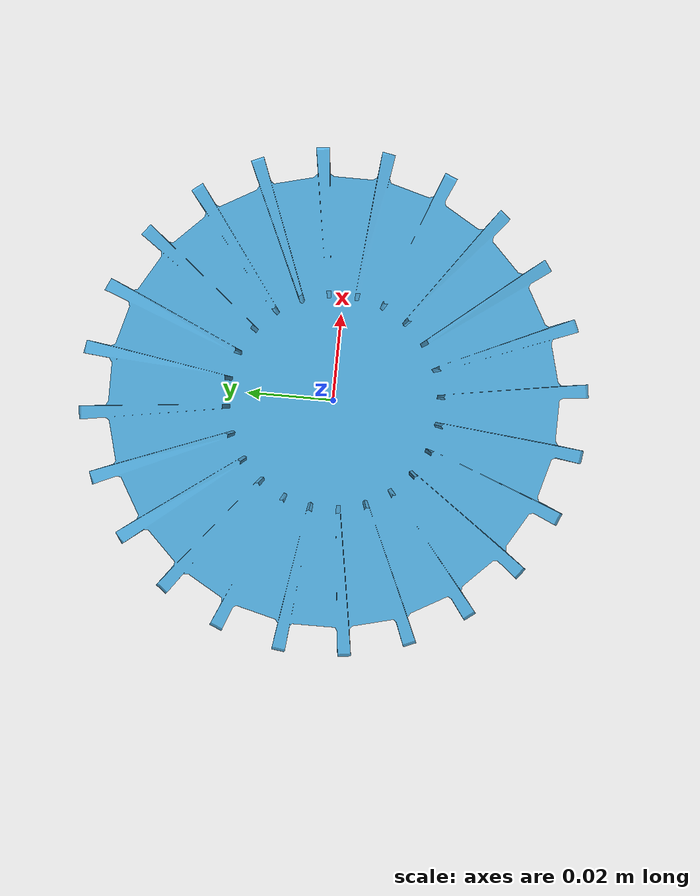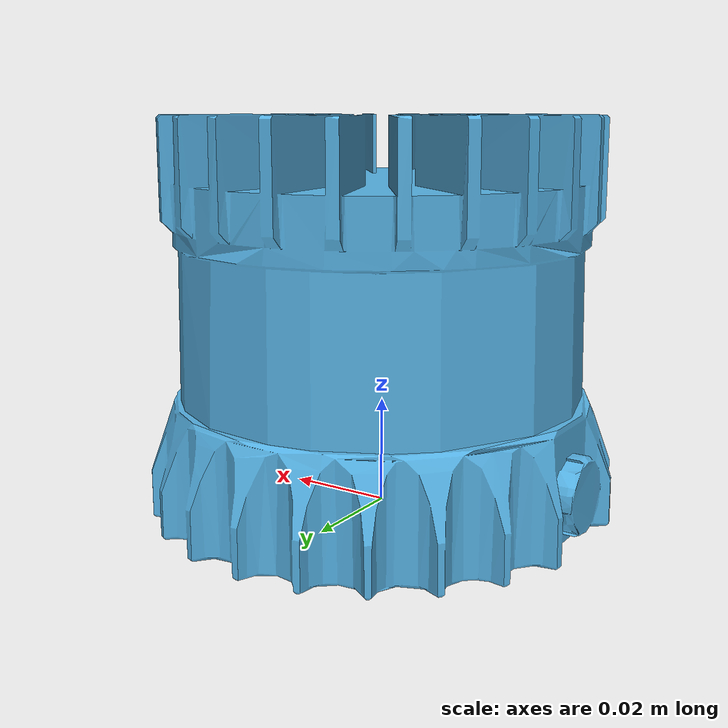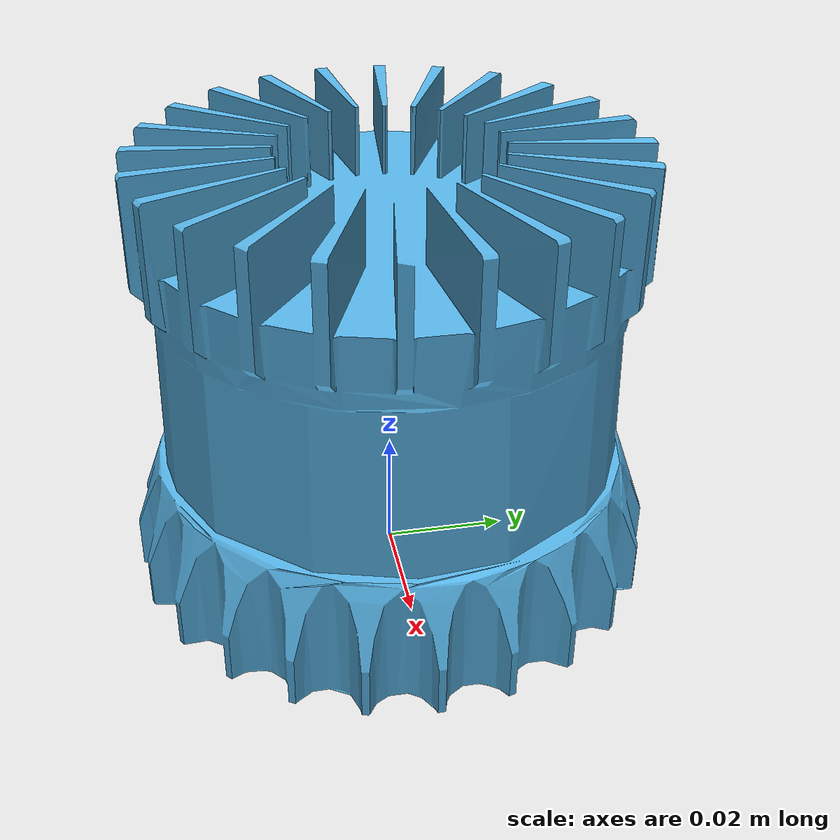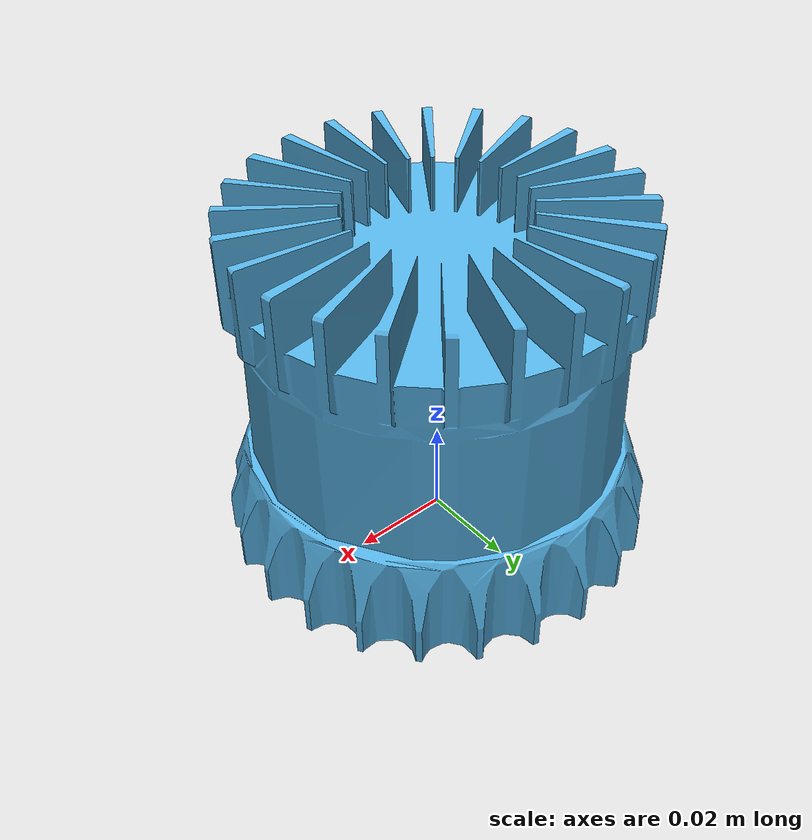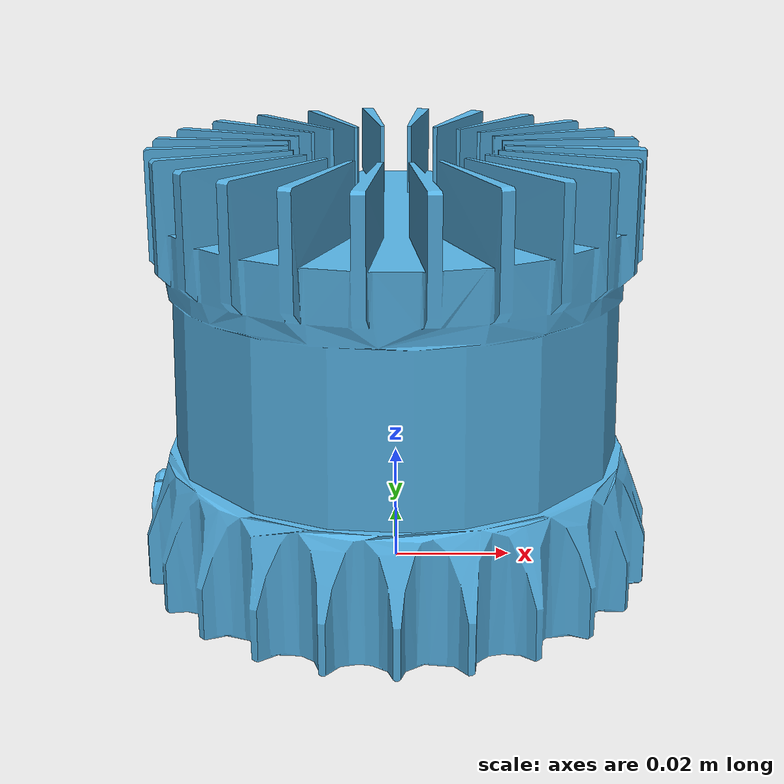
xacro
<?xml version="1.0"?>
<robot xmlns:xacro="http://ros.org/wiki/xacro" name="example_robot">

  <!-- Base Footprint -->
  <link name="base_link" />

  <xacro:include filename="$(find ouster_os1_64)/urdf/os1_64.urdf.xacro"/>
  <xacro:os1_64 parent_link="base_link" name="ouster" prefix="/os1_cloud_node" hz="10" samples="512">
    <origin xyz="0 0 0" rpy="0 0 0" />
  </xacro:os1_64>

</robot>

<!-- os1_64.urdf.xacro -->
<!-- Modified from the work of Wil Selby (https://github.com/wilselby/ouster_example/blob/master/ouster_description/urdf/OS1-64.urdf.xacro) -->
<robot xmlns:xacro="http://ros.org/wiki/xacro" name="os1_64">
  <xacro:property name="PI" value="3.1415926535897931"/>

  <xacro:macro name="os1_64" params="*origin parent_link:=base_link name:=ouster reduced:=true prefix:=/os1_cloud_node hz:=10 samples:=512 min_range:=0.8 max_range:=100 noise:=0.008 min_angle_v:=-16.6 max_angle_v:=16.6 gpu:=false">

    <!-- Conditional properties -->
    <xacro:if value="${reduced}">
      <xacro:property name="file_visual" value="os1_64_reduced"/>
    </xacro:if>
    <xacro:unless value="${reduced}">
      <xacro:property name="file_visual" value="os1_64"/>
    </xacro:unless>

    <xacro:if value="${gpu}">
      <xacro:property name="gpu_str" value="gpu_"/>
    </xacro:if>
    <xacro:unless value="${gpu}">
      <xacro:property name="gpu_str" value=""/>
    </xacro:unless>

    <joint name="${name}_joint" type="fixed">
      <xacro:insert_block name="origin" />
      <parent link="${parent_link}"/>
      <child link="${name}_sensor"/>
    </joint>

    <link name="${name}_sensor">
      <inertial>
        <mass value="0.425"/>
        <origin xyz="0 0 0.03675" rpy="0 0 0" />
        <inertia ixx="0.000308429" ixy="0" ixz="0"
                 iyy="0.000308429" iyz="0" izz="0.00034589"/>
      </inertial>
      <collision name="lidar_collision">
        <origin xyz="0 0 0.03675" rpy="0 0 0" />
        <geometry>
          <cylinder radius="0.04350" length="0.07350"/>
        </geometry>
      </collision>
      <visual name="lidar_visual">
        <origin xyz="0 0 0" rpy="0 0 0"/>
        <geometry>
          <mesh filename="package://ouster_os1_64/meshes/${file_visual}.stl" />
        </geometry>
      </visual>
    </link>

    <link name="${name}_lidar">
      <pose>0 0 0 0 0 ${PI}</pose>
    </link>
    <joint name="${name}_lidar_joint" type="fixed">
      <parent link="${name}_sensor"/>
      <child link="${name}_lidar"/>
    </joint>

    <gazebo reference="${name}_lidar">
      <sensor type="${gpu_str}ray" name="${name}_lidar">
        <pose>0 0 0 0 0 0</pose>
        <visualize>false</visualize>
        <update_rate>${hz}</update_rate>
        <ray>
          <scan>
            <vertical>
              <samples>64</samples>
              <resolution>1</resolution>
              <min_angle>${min_angle_v*PI/180.0}</min_angle>
              <max_angle>${max_angle_v*PI/180.0}</max_angle>
            </vertical>
            <horizontal>
              <samples>${samples}</samples>
              <resolution>1</resolution>
              <min_angle>-${PI}</min_angle>
              <max_angle>${PI}</max_angle>
            </horizontal>
          </scan>
          <range>
            <min>${min_range}</min>
            <max>${max_range}</max>
            <resolution>0.03</resolution>
          </range>
          <noise>
            <type>gaussian</type>
            <mean>0.0</mean>
            <stddev>0.000000000001</stddev>
          </noise>
        </ray>
        <plugin name="gazebo_ros_laser_controller" filename="libgazebo_ros_ouster_${gpu_str}laser.so">
          <topicName>${prefix}/points</topicName>
          <frameName>${name}_lidar</frameName>
          <min_range>${min_range}</min_range>
          <max_range>${max_range}</max_range>
          <gaussianNoise>${noise}</gaussianNoise>
        </plugin>
      </sensor>
    </gazebo>

    <link name="${name}_imu"/>
    <joint name="${name}_imu_joint" type="fixed">
      <parent link="${name}_sensor"/>
      <child link="${name}_imu"/>
    </joint>

    <gazebo reference="${name}_imu">
      <sensor type="imu" name="${name}_imu_sensor">
        <pose>0 0 0 0 0 0</pose>
        <always_on>true</always_on>
        <update_rate>100</update_rate>
        <visualize>true</visualize>
        <topic>${prefix}/imu</topic>
      </sensor>
    </gazebo>

  </xacro:macro>
</robot>
